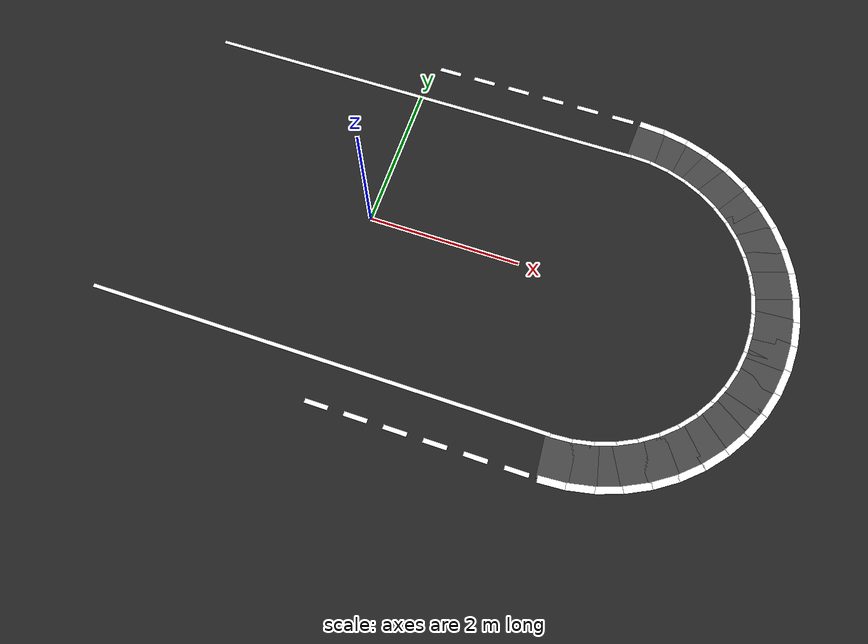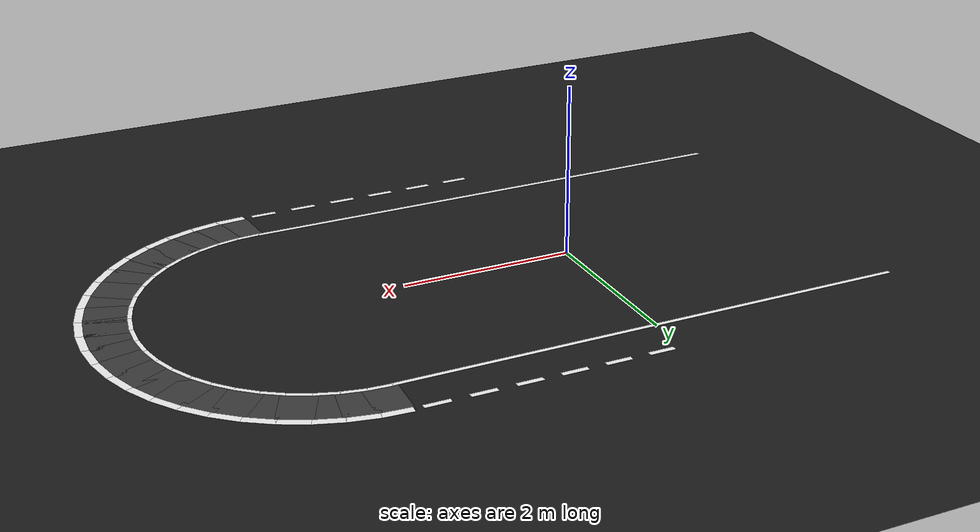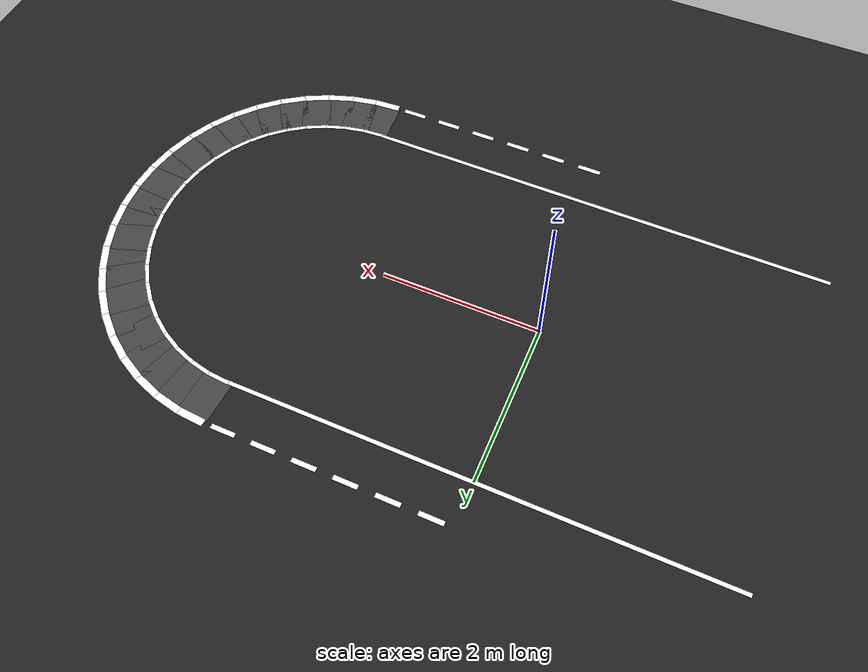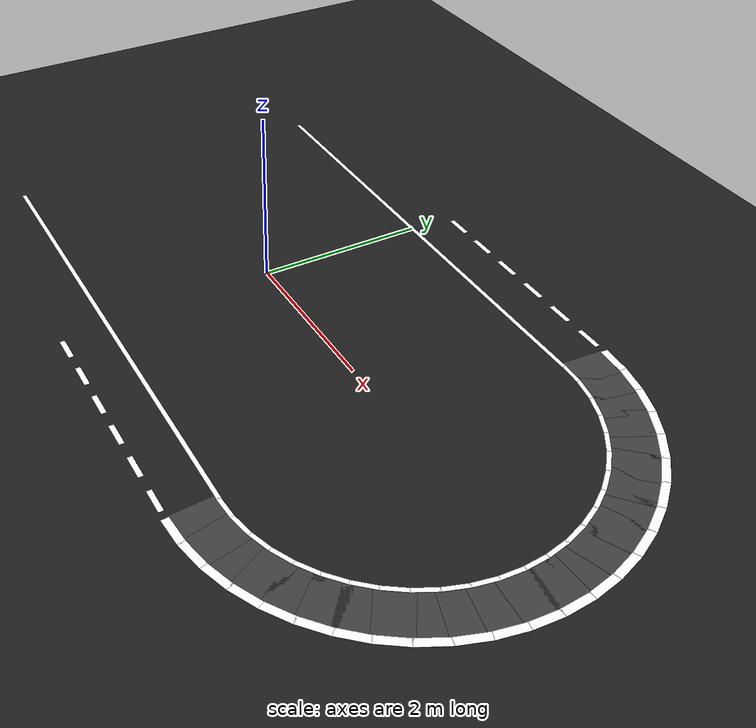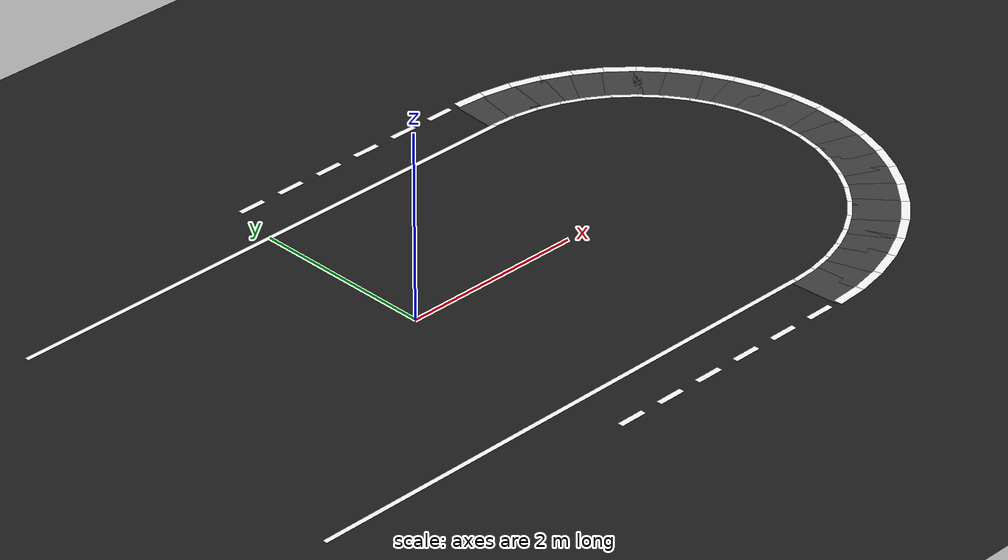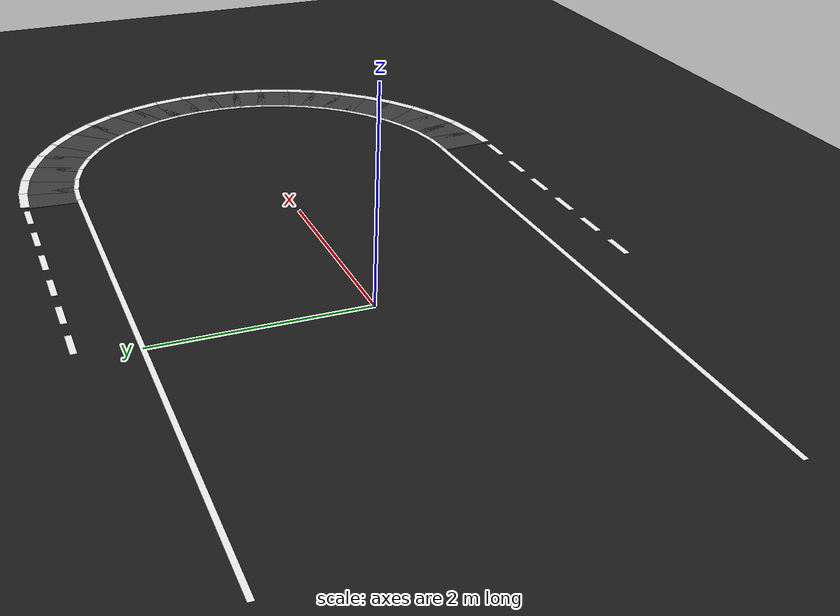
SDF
<sdf version="1.6">
 <world name="oval_lane_world">
  <model name="ground_plane">
   <static>true</static>
   <link name="link">
    <collision name="collision">
     <geometry><plane><normal>0 0 1</normal><size>100 100</size></plane></geometry>
     <surface><friction><ode><mu>1.0</mu><mu2>1.0</mu2></ode></friction></surface>
    </collision>
    <visual name="visual">
     <geometry><plane><normal>0 0 1</normal><size>100 100</size></plane></geometry>
     <material><ambient>0.10 0.10 0.10 1</ambient><diffuse>0.12 0.12 0.12 1</diffuse></material>
    </visual>
   </link>
  </model>
  <model name="sl_top_0">
   <static>true</static>
   <pose>0.00000 2.00000 0.00700 0 0 0.00000</pose>
   <link name="link">
    <visual name="visual">
     <geometry><box><size>6.00000 0.05000 0.00400</size></box></geometry>
     <material>
      <ambient>1.000 1.000 1.000 1</ambient>
      <diffuse>1.000 1.000 1.000 1</diffuse>
      <specular>0.05 0.05 0.05 1</specular>
     </material>
    </visual>
   </link>
  </model>
  <model name="sl_bot_0">
   <static>true</static>
   <pose>0.00000 -2.00000 0.00700 0 0 0.00000</pose>
   <link name="link">
    <visual name="visual">
     <geometry><box><size>6.00000 0.05000 0.00400</size></box></geometry>
     <material>
      <ambient>1.000 1.000 1.000 1</ambient>
      <diffuse>1.000 1.000 1.000 1</diffuse>
      <specular>0.05 0.05 0.05 1</specular>
     </material>
    </visual>
   </link>
  </model>
  <model name="dl_top_1_6">
   <static>true</static>
   <pose>0.25000 2.53400 0.00700 0 0 0.00000</pose>
   <link name="link">
    <visual name="visual">
     <geometry><box><size>0.30000 0.06000 0.00400</size></box></geometry>
     <material>
      <ambient>1.000 1.000 1.000 1</ambient>
      <diffuse>1.000 1.000 1.000 1</diffuse>
      <specular>0.05 0.05 0.05 1</specular>
     </material>
    </visual>
   </link>
  </model>
  <model name="dl_top_1_7">
   <static>true</static>
   <pose>0.75000 2.53400 0.00700 0 0 0.00000</pose>
   <link name="link">
    <visual name="visual">
     <geometry><box><size>0.30000 0.06000 0.00400</size></box></geometry>
     <material>
      <ambient>1.000 1.000 1.000 1</ambient>
      <diffuse>1.000 1.000 1.000 1</diffuse>
      <specular>0.05 0.05 0.05 1</specular>
     </material>
    </visual>
   </link>
  </model>
  <model name="dl_top_1_8">
   <static>true</static>
   <pose>1.25000 2.53400 0.00700 0 0 0.00000</pose>
   <link name="link">
    <visual name="visual">
     <geometry><box><size>0.30000 0.06000 0.00400</size></box></geometry>
     <material>
      <ambient>1.000 1.000 1.000 1</ambient>
      <diffuse>1.000 1.000 1.000 1</diffuse>
      <specular>0.05 0.05 0.05 1</specular>
     </material>
    </visual>
   </link>
  </model>
  <model name="dl_top_1_9">
   <static>true</static>
   <pose>1.75000 2.53400 0.00700 0 0 0.00000</pose>
   <link name="link">
    <visual name="visual">
     <geometry><box><size>0.30000 0.06000 0.00400</size></box></geometry>
     <material>
      <ambient>1.000 1.000 1.000 1</ambient>
      <diffuse>1.000 1.000 1.000 1</diffuse>
      <specular>0.05 0.05 0.05 1</specular>
     </material>
    </visual>
   </link>
  </model>
  <model name="dl_top_1_10">
   <static>true</static>
   <pose>2.25000 2.53400 0.00700 0 0 0.00000</pose>
   <link name="link">
    <visual name="visual">
     <geometry><box><size>0.30000 0.06000 0.00400</size></box></geometry>
     <material>
      <ambient>1.000 1.000 1.000 1</ambient>
      <diffuse>1.000 1.000 1.000 1</diffuse>
      <specular>0.05 0.05 0.05 1</specular>
     </material>
    </visual>
   </link>
  </model>
  <model name="dl_top_1_11">
   <static>true</static>
   <pose>2.75000 2.53400 0.00700 0 0 0.00000</pose>
   <link name="link">
    <visual name="visual">
     <geometry><box><size>0.30000 0.06000 0.00400</size></box></geometry>
     <material>
      <ambient>1.000 1.000 1.000 1</ambient>
      <diffuse>1.000 1.000 1.000 1</diffuse>
      <specular>0.05 0.05 0.05 1</specular>
     </material>
    </visual>
   </link>
  </model>
  <model name="dl_bot_1_6">
   <static>true</static>
   <pose>0.25000 -2.53400 0.00700 0 0 0.00000</pose>
   <link name="link">
    <visual name="visual">
     <geometry><box><size>0.30000 0.06000 0.00400</size></box></geometry>
     <material>
      <ambient>1.000 1.000 1.000 1</ambient>
      <diffuse>1.000 1.000 1.000 1</diffuse>
      <specular>0.05 0.05 0.05 1</specular>
     </material>
    </visual>
   </link>
  </model>
  <model name="dl_bot_1_7">
   <static>true</static>
   <pose>0.75000 -2.53400 0.00700 0 0 0.00000</pose>
   <link name="link">
    <visual name="visual">
     <geometry><box><size>0.30000 0.06000 0.00400</size></box></geometry>
     <material>
      <ambient>1.000 1.000 1.000 1</ambient>
      <diffuse>1.000 1.000 1.000 1</diffuse>
      <specular>0.05 0.05 0.05 1</specular>
     </material>
    </visual>
   </link>
  </model>
  <model name="dl_bot_1_8">
   <static>true</static>
   <pose>1.25000 -2.53400 0.00700 0 0 0.00000</pose>
   <link name="link">
    <visual name="visual">
     <geometry><box><size>0.30000 0.06000 0.00400</size></box></geometry>
     <material>
      <ambient>1.000 1.000 1.000 1</ambient>
      <diffuse>1.000 1.000 1.000 1</diffuse>
      <specular>0.05 0.05 0.05 1</specular>
     </material>
    </visual>
   </link>
  </model>
  <model name="dl_bot_1_9">
   <static>true</static>
   <pose>1.75000 -2.53400 0.00700 0 0 0.00000</pose>
   <link name="link">
    <visual name="visual">
     <geometry><box><size>0.30000 0.06000 0.00400</size></box></geometry>
     <material>
      <ambient>1.000 1.000 1.000 1</ambient>
      <diffuse>1.000 1.000 1.000 1</diffuse>
      <specular>0.05 0.05 0.05 1</specular>
     </material>
    </visual>
   </link>
  </model>
  <model name="dl_bot_1_10">
   <static>true</static>
   <pose>2.25000 -2.53400 0.00700 0 0 0.00000</pose>
   <link name="link">
    <visual name="visual">
     <geometry><box><size>0.30000 0.06000 0.00400</size></box></geometry>
     <material>
      <ambient>1.000 1.000 1.000 1</ambient>
      <diffuse>1.000 1.000 1.000 1</diffuse>
      <specular>0.05 0.05 0.05 1</specular>
     </material>
    </visual>
   </link>
  </model>
  <model name="dl_bot_1_11">
   <static>true</static>
   <pose>2.75000 -2.53400 0.00700 0 0 0.00000</pose>
   <link name="link">
    <visual name="visual">
     <geometry><box><size>0.30000 0.06000 0.00400</size></box></geometry>
     <material>
      <ambient>1.000 1.000 1.000 1</ambient>
      <diffuse>1.000 1.000 1.000 1</diffuse>
      <specular>0.05 0.05 0.05 1</specular>
     </material>
    </visual>
   </link>
  </model>
  <model name="road_r_0">
   <static>true</static>
   <pose>3.14777 2.25466 0.00250 0.0 0.0 -0.06545</pose>
   <link name="link">
    <visual name="visual">
     <geometry><box><size>0.38165 0.53400 0.00500</size></box></geometry>
     <material>
      <ambient>0.250 0.250 0.250 1</ambient>
      <diffuse>0.250 0.250 0.250 1</diffuse>
      <specular>0.05 0.05 0.05 1</specular>
     </material>
    </visual>
   </link>
  </model>
  <model name="cl_r_0_0">
   <static>true</static>
   <pose>3.13081 1.99572 0.00700 0 0 -0.06545</pose>
   <link name="link">
    <visual name="visual">
     <geometry><box><size>0.27180 0.05000 0.00400</size></box></geometry>
     <material>
      <ambient>1.000 1.000 1.000 1</ambient>
      <diffuse>1.000 1.000 1.000 1</diffuse>
      <specular>0.05 0.05 0.05 1</specular>
     </material>
    </visual>
   </link>
  </model>
  <model name="cl_r_1_0">
   <static>true</static>
   <pose>3.16573 2.52857 0.00700 0 0 -0.06545</pose>
   <link name="link">
    <visual name="visual">
     <geometry><box><size>0.34170 0.09000 0.00400</size></box></geometry>
     <material>
      <ambient>1.000 1.000 1.000 1</ambient>
      <diffuse>1.000 1.000 1.000 1</diffuse>
      <specular>0.05 0.05 0.05 1</specular>
     </material>
    </visual>
   </link>
  </model>
  <model name="road_r_1">
   <static>true</static>
   <pose>3.44081 2.21608 0.00250 0.0 0.0 -0.19635</pose>
   <link name="link">
    <visual name="visual">
     <geometry><box><size>0.38165 0.53400 0.00500</size></box></geometry>
     <material>
      <ambient>0.250 0.250 0.250 1</ambient>
      <diffuse>0.250 0.250 0.250 1</diffuse>
      <specular>0.05 0.05 0.05 1</specular>
     </material>
    </visual>
   </link>
  </model>
  <model name="cl_r_0_1">
   <static>true</static>
   <pose>3.39018 1.96157 0.00700 0 0 -0.19635</pose>
   <link name="link">
    <visual name="visual">
     <geometry><box><size>0.27180 0.05000 0.00400</size></box></geometry>
     <material>
      <ambient>1.000 1.000 1.000 1</ambient>
      <diffuse>1.000 1.000 1.000 1</diffuse>
      <specular>0.05 0.05 0.05 1</specular>
     </material>
    </visual>
   </link>
  </model>
  <model name="cl_r_1_1">
   <static>true</static>
   <pose>3.49436 2.48531 0.00700 0 0 -0.19635</pose>
   <link name="link">
    <visual name="visual">
     <geometry><box><size>0.34170 0.09000 0.00400</size></box></geometry>
     <material>
      <ambient>1.000 1.000 1.000 1</ambient>
      <diffuse>1.000 1.000 1.000 1</diffuse>
      <specular>0.05 0.05 0.05 1</specular>
     </material>
    </visual>
   </link>
  </model>
  <model name="road_r_2">
   <static>true</static>
   <pose>3.72629 2.13959 0.00250 0.0 0.0 -0.32725</pose>
   <link name="link">
    <visual name="visual">
     <geometry><box><size>0.38165 0.53400 0.00500</size></box></geometry>
     <material>
      <ambient>0.250 0.250 0.250 1</ambient>
      <diffuse>0.250 0.250 0.250 1</diffuse>
      <specular>0.05 0.05 0.05 1</specular>
     </material>
    </visual>
   </link>
  </model>
  <model name="cl_r_0_2">
   <static>true</static>
   <pose>3.64288 1.89386 0.00700 0 0 -0.32725</pose>
   <link name="link">
    <visual name="visual">
     <geometry><box><size>0.27180 0.05000 0.00400</size></box></geometry>
     <material>
      <ambient>1.000 1.000 1.000 1</ambient>
      <diffuse>1.000 1.000 1.000 1</diffuse>
      <specular>0.05 0.05 0.05 1</specular>
     </material>
    </visual>
   </link>
  </model>
  <model name="cl_r_1_2">
   <static>true</static>
   <pose>3.81453 2.39952 0.00700 0 0 -0.32725</pose>
   <link name="link">
    <visual name="visual">
     <geometry><box><size>0.34170 0.09000 0.00400</size></box></geometry>
     <material>
      <ambient>1.000 1.000 1.000 1</ambient>
      <diffuse>1.000 1.000 1.000 1</diffuse>
      <specular>0.05 0.05 0.05 1</specular>
     </material>
    </visual>
   </link>
  </model>
  <model name="road_r_3">
   <static>true</static>
   <pose>3.99935 2.02648 0.00250 0.0 0.0 -0.45815</pose>
   <link name="link">
    <visual name="visual">
     <geometry><box><size>0.38165 0.53400 0.00500</size></box></geometry>
     <material>
      <ambient>0.250 0.250 0.250 1</ambient>
      <diffuse>0.250 0.250 0.250 1</diffuse>
      <specular>0.05 0.05 0.05 1</specular>
     </material>
    </visual>
   </link>
  </model>
  <model name="cl_r_0_3">
   <static>true</static>
   <pose>3.88458 1.79375 0.00700 0 0 -0.45815</pose>
   <link name="link">
    <visual name="visual">
     <geometry><box><size>0.27180 0.05000 0.00400</size></box></geometry>
     <material>
      <ambient>1.000 1.000 1.000 1</ambient>
      <diffuse>1.000 1.000 1.000 1</diffuse>
      <specular>0.05 0.05 0.05 1</specular>
     </material>
    </visual>
   </link>
  </model>
  <model name="cl_r_1_3">
   <static>true</static>
   <pose>4.12076 2.27268 0.00700 0 0 -0.45815</pose>
   <link name="link">
    <visual name="visual">
     <geometry><box><size>0.34170 0.09000 0.00400</size></box></geometry>
     <material>
      <ambient>1.000 1.000 1.000 1</ambient>
      <diffuse>1.000 1.000 1.000 1</diffuse>
      <specular>0.05 0.05 0.05 1</specular>
     </material>
    </visual>
   </link>
  </model>
  <model name="road_r_4">
   <static>true</static>
   <pose>4.25531 1.87871 0.00250 0.0 0.0 -0.58905</pose>
   <link name="link">
    <visual name="visual">
     <geometry><box><size>0.38165 0.53400 0.00500</size></box></geometry>
     <material>
      <ambient>0.250 0.250 0.250 1</ambient>
      <diffuse>0.250 0.250 0.250 1</diffuse>
      <specular>0.05 0.05 0.05 1</specular>
     </material>
    </visual>
   </link>
  </model>
  <model name="cl_r_0_4">
   <static>true</static>
   <pose>4.11114 1.66294 0.00700 0 0 -0.58905</pose>
   <link name="link">
    <visual name="visual">
     <geometry><box><size>0.27180 0.05000 0.00400</size></box></geometry>
     <material>
      <ambient>1.000 1.000 1.000 1</ambient>
      <diffuse>1.000 1.000 1.000 1</diffuse>
      <specular>0.05 0.05 0.05 1</specular>
     </material>
    </visual>
   </link>
  </model>
  <model name="cl_r_1_4">
   <static>true</static>
   <pose>4.40781 2.10694 0.00700 0 0 -0.58905</pose>
   <link name="link">
    <visual name="visual">
     <geometry><box><size>0.34170 0.09000 0.00400</size></box></geometry>
     <material>
      <ambient>1.000 1.000 1.000 1</ambient>
      <diffuse>1.000 1.000 1.000 1</diffuse>
      <specular>0.05 0.05 0.05 1</specular>
     </material>
    </visual>
   </link>
  </model>
  <model name="road_r_5">
   <static>true</static>
   <pose>4.48979 1.69878 0.00250 0.0 0.0 -0.71995</pose>
   <link name="link">
    <visual name="visual">
     <geometry><box><size>0.38165 0.53400 0.00500</size></box></geometry>
     <material>
      <ambient>0.250 0.250 0.250 1</ambient>
      <diffuse>0.250 0.250 0.250 1</diffuse>
      <specular>0.05 0.05 0.05 1</specular>
     </material>
    </visual>
   </link>
  </model>
  <model name="cl_r_0_5">
   <static>true</static>
   <pose>4.31869 1.50368 0.00700 0 0 -0.71995</pose>
   <link name="link">
    <visual name="visual">
     <geometry><box><size>0.27180 0.05000 0.00400</size></box></geometry>
     <material>
      <ambient>1.000 1.000 1.000 1</ambient>
      <diffuse>1.000 1.000 1.000 1</diffuse>
      <specular>0.05 0.05 0.05 1</specular>
     </material>
    </visual>
   </link>
  </model>
  <model name="cl_r_1_5">
   <static>true</static>
   <pose>4.67078 1.90516 0.00700 0 0 -0.71995</pose>
   <link name="link">
    <visual name="visual">
     <geometry><box><size>0.34170 0.09000 0.00400</size></box></geometry>
     <material>
      <ambient>1.000 1.000 1.000 1</ambient>
      <diffuse>1.000 1.000 1.000 1</diffuse>
      <specular>0.05 0.05 0.05 1</specular>
     </material>
    </visual>
   </link>
  </model>
  <model name="road_r_6">
   <static>true</static>
   <pose>4.69878 1.48980 0.00250 0.0 0.0 -0.85085</pose>
   <link name="link">
    <visual name="visual">
     <geometry><box><size>0.38165 0.53400 0.00500</size></box></geometry>
     <material>
      <ambient>0.250 0.250 0.250 1</ambient>
      <diffuse>0.250 0.250 0.250 1</diffuse>
      <specular>0.05 0.05 0.05 1</specular>
     </material>
    </visual>
   </link>
  </model>
  <model name="cl_r_0_6">
   <static>true</static>
   <pose>4.50368 1.31869 0.00700 0 0 -0.85085</pose>
   <link name="link">
    <visual name="visual">
     <geometry><box><size>0.27180 0.05000 0.00400</size></box></geometry>
     <material>
      <ambient>1.000 1.000 1.000 1</ambient>
      <diffuse>1.000 1.000 1.000 1</diffuse>
      <specular>0.05 0.05 0.05 1</specular>
     </material>
    </visual>
   </link>
  </model>
  <model name="cl_r_1_6">
   <static>true</static>
   <pose>4.90516 1.67078 0.00700 0 0 -0.85085</pose>
   <link name="link">
    <visual name="visual">
     <geometry><box><size>0.34170 0.09000 0.00400</size></box></geometry>
     <material>
      <ambient>1.000 1.000 1.000 1</ambient>
      <diffuse>1.000 1.000 1.000 1</diffuse>
      <specular>0.05 0.05 0.05 1</specular>
     </material>
    </visual>
   </link>
  </model>
  <model name="road_r_7">
   <static>true</static>
   <pose>4.87871 1.25531 0.00250 0.0 0.0 -0.98175</pose>
   <link name="link">
    <visual name="visual">
     <geometry><box><size>0.38165 0.53400 0.00500</size></box></geometry>
     <material>
      <ambient>0.250 0.250 0.250 1</ambient>
      <diffuse>0.250 0.250 0.250 1</diffuse>
      <specular>0.05 0.05 0.05 1</specular>
     </material>
    </visual>
   </link>
  </model>
  <model name="cl_r_0_7">
   <static>true</static>
   <pose>4.66294 1.11114 0.00700 0 0 -0.98175</pose>
   <link name="link">
    <visual name="visual">
     <geometry><box><size>0.27180 0.05000 0.00400</size></box></geometry>
     <material>
      <ambient>1.000 1.000 1.000 1</ambient>
      <diffuse>1.000 1.000 1.000 1</diffuse>
      <specular>0.05 0.05 0.05 1</specular>
     </material>
    </visual>
   </link>
  </model>
  <model name="cl_r_1_7">
   <static>true</static>
   <pose>5.10694 1.40781 0.00700 0 0 -0.98175</pose>
   <link name="link">
    <visual name="visual">
     <geometry><box><size>0.34170 0.09000 0.00400</size></box></geometry>
     <material>
      <ambient>1.000 1.000 1.000 1</ambient>
      <diffuse>1.000 1.000 1.000 1</diffuse>
      <specular>0.05 0.05 0.05 1</specular>
     </material>
    </visual>
   </link>
  </model>
  <model name="road_r_8">
   <static>true</static>
   <pose>5.02648 0.99935 0.00250 0.0 0.0 -1.11265</pose>
   <link name="link">
    <visual name="visual">
     <geometry><box><size>0.38165 0.53400 0.00500</size></box></geometry>
     <material>
      <ambient>0.250 0.250 0.250 1</ambient>
      <diffuse>0.250 0.250 0.250 1</diffuse>
      <specular>0.05 0.05 0.05 1</specular>
     </material>
    </visual>
   </link>
  </model>
  <model name="cl_r_0_8">
   <static>true</static>
   <pose>4.79375 0.88458 0.00700 0 0 -1.11265</pose>
   <link name="link">
    <visual name="visual">
     <geometry><box><size>0.27180 0.05000 0.00400</size></box></geometry>
     <material>
      <ambient>1.000 1.000 1.000 1</ambient>
      <diffuse>1.000 1.000 1.000 1</diffuse>
      <specular>0.05 0.05 0.05 1</specular>
     </material>
    </visual>
   </link>
  </model>
  <model name="cl_r_1_8">
   <static>true</static>
   <pose>5.27268 1.12076 0.00700 0 0 -1.11265</pose>
   <link name="link">
    <visual name="visual">
     <geometry><box><size>0.34170 0.09000 0.00400</size></box></geometry>
     <material>
      <ambient>1.000 1.000 1.000 1</ambient>
      <diffuse>1.000 1.000 1.000 1</diffuse>
      <specular>0.05 0.05 0.05 1</specular>
     </material>
    </visual>
   </link>
  </model>
  <model name="road_r_9">
   <static>true</static>
   <pose>5.13959 0.72629 0.00250 0.0 0.0 -1.24355</pose>
   <link name="link">
    <visual name="visual">
     <geometry><box><size>0.38165 0.53400 0.00500</size></box></geometry>
     <material>
      <ambient>0.250 0.250 0.250 1</ambient>
      <diffuse>0.250 0.250 0.250 1</diffuse>
      <specular>0.05 0.05 0.05 1</specular>
     </material>
    </visual>
   </link>
  </model>
  <model name="cl_r_0_9">
   <static>true</static>
   <pose>4.89386 0.64288 0.00700 0 0 -1.24355</pose>
   <link name="link">
    <visual name="visual">
     <geometry><box><size>0.27180 0.05000 0.00400</size></box></geometry>
     <material>
      <ambient>1.000 1.000 1.000 1</ambient>
      <diffuse>1.000 1.000 1.000 1</diffuse>
      <specular>0.05 0.05 0.05 1</specular>
     </material>
    </visual>
   </link>
  </model>
  <model name="cl_r_1_9">
   <static>true</static>
   <pose>5.39952 0.81453 0.00700 0 0 -1.24355</pose>
   <link name="link">
    <visual name="visual">
     <geometry><box><size>0.34170 0.09000 0.00400</size></box></geometry>
     <material>
      <ambient>1.000 1.000 1.000 1</ambient>
      <diffuse>1.000 1.000 1.000 1</diffuse>
      <specular>0.05 0.05 0.05 1</specular>
     </material>
    </visual>
   </link>
  </model>
  <model name="road_r_10">
   <static>true</static>
   <pose>5.21608 0.44081 0.00250 0.0 0.0 -1.37445</pose>
   <link name="link">
    <visual name="visual">
     <geometry><box><size>0.38165 0.53400 0.00500</size></box></geometry>
     <material>
      <ambient>0.250 0.250 0.250 1</ambient>
      <diffuse>0.250 0.250 0.250 1</diffuse>
      <specular>0.05 0.05 0.05 1</specular>
     </material>
    </visual>
   </link>
  </model>
  <model name="cl_r_0_10">
   <static>true</static>
   <pose>4.96157 0.39018 0.00700 0 0 -1.37445</pose>
   <link name="link">
    <visual name="visual">
     <geometry><box><size>0.27180 0.05000 0.00400</size></box></geometry>
     <material>
      <ambient>1.000 1.000 1.000 1</ambient>
      <diffuse>1.000 1.000 1.000 1</diffuse>
      <specular>0.05 0.05 0.05 1</specular>
     </material>
    </visual>
   </link>
  </model>
  <model name="cl_r_1_10">
   <static>true</static>
   <pose>5.48531 0.49436 0.00700 0 0 -1.37445</pose>
   <link name="link">
    <visual name="visual">
     <geometry><box><size>0.34170 0.09000 0.00400</size></box></geometry>
     <material>
      <ambient>1.000 1.000 1.000 1</ambient>
      <diffuse>1.000 1.000 1.000 1</diffuse>
      <specular>0.05 0.05 0.05 1</specular>
     </material>
    </visual>
   </link>
  </model>
  <model name="road_r_11">
   <static>true</static>
   <pose>5.25466 0.14778 0.00250 0.0 0.0 -1.50535</pose>
   <link name="link">
    <visual name="visual">
     <geometry><box><size>0.38165 0.53400 0.00500</size></box></geometry>
     <material>
      <ambient>0.250 0.250 0.250 1</ambient>
      <diffuse>0.250 0.250 0.250 1</diffuse>
      <specular>0.05 0.05 0.05 1</specular>
     </material>
    </visual>
   </link>
  </model>
  <model name="cl_r_0_11">
   <static>true</static>
   <pose>4.99572 0.13081 0.00700 0 0 -1.50535</pose>
   <link name="link">
    <visual name="visual">
     <geometry><box><size>0.27180 0.05000 0.00400</size></box></geometry>
     <material>
      <ambient>1.000 1.000 1.000 1</ambient>
      <diffuse>1.000 1.000 1.000 1</diffuse>
      <specular>0.05 0.05 0.05 1</specular>
     </material>
    </visual>
   </link>
  </model>
  <model name="cl_r_1_11">
   <static>true</static>
   <pose>5.52858 0.16573 0.00700 0 0 -1.50535</pose>
   <link name="link">
    <visual name="visual">
     <geometry><box><size>0.34170 0.09000 0.00400</size></box></geometry>
     <material>
      <ambient>1.000 1.000 1.000 1</ambient>
      <diffuse>1.000 1.000 1.000 1</diffuse>
      <specular>0.05 0.05 0.05 1</specular>
     </material>
    </visual>
   </link>
  </model>
  <model name="road_r_12">
   <static>true</static>
   <pose>5.25466 -0.14777 0.00250 0.0 0.0 -1.63625</pose>
   <link name="link">
    <visual name="visual">
     <geometry><box><size>0.38165 0.53400 0.00500</size></box></geometry>
     <material>
      <ambient>0.250 0.250 0.250 1</ambient>
      <diffuse>0.250 0.250 0.250 1</diffuse>
      <specular>0.05 0.05 0.05 1</specular>
     </material>
    </visual>
   </link>
  </model>
  <model name="cl_r_0_12">
   <static>true</static>
   <pose>4.99572 -0.13081 0.00700 0 0 -1.63625</pose>
   <link name="link">
    <visual name="visual">
     <geometry><box><size>0.27180 0.05000 0.00400</size></box></geometry>
     <material>
      <ambient>1.000 1.000 1.000 1</ambient>
      <diffuse>1.000 1.000 1.000 1</diffuse>
      <specular>0.05 0.05 0.05 1</specular>
     </material>
    </visual>
   </link>
  </model>
  <model name="cl_r_1_12">
   <static>true</static>
   <pose>5.52857 -0.16573 0.00700 0 0 -1.63625</pose>
   <link name="link">
    <visual name="visual">
     <geometry><box><size>0.34170 0.09000 0.00400</size></box></geometry>
     <material>
      <ambient>1.000 1.000 1.000 1</ambient>
      <diffuse>1.000 1.000 1.000 1</diffuse>
      <specular>0.05 0.05 0.05 1</specular>
     </material>
    </visual>
   </link>
  </model>
  <model name="road_r_13">
   <static>true</static>
   <pose>5.21609 -0.44081 0.00250 0.0 0.0 -1.76715</pose>
   <link name="link">
    <visual name="visual">
     <geometry><box><size>0.38165 0.53400 0.00500</size></box></geometry>
     <material>
      <ambient>0.250 0.250 0.250 1</ambient>
      <diffuse>0.250 0.250 0.250 1</diffuse>
      <specular>0.05 0.05 0.05 1</specular>
     </material>
    </visual>
   </link>
  </model>
  <model name="cl_r_0_13">
   <static>true</static>
   <pose>4.96157 -0.39018 0.00700 0 0 -1.76715</pose>
   <link name="link">
    <visual name="visual">
     <geometry><box><size>0.27180 0.05000 0.00400</size></box></geometry>
     <material>
      <ambient>1.000 1.000 1.000 1</ambient>
      <diffuse>1.000 1.000 1.000 1</diffuse>
      <specular>0.05 0.05 0.05 1</specular>
     </material>
    </visual>
   </link>
  </model>
  <model name="cl_r_1_13">
   <static>true</static>
   <pose>5.48531 -0.49436 0.00700 0 0 -1.76715</pose>
   <link name="link">
    <visual name="visual">
     <geometry><box><size>0.34170 0.09000 0.00400</size></box></geometry>
     <material>
      <ambient>1.000 1.000 1.000 1</ambient>
      <diffuse>1.000 1.000 1.000 1</diffuse>
      <specular>0.05 0.05 0.05 1</specular>
     </material>
    </visual>
   </link>
  </model>
  <model name="road_r_14">
   <static>true</static>
   <pose>5.13959 -0.72629 0.00250 0.0 0.0 -1.89805</pose>
   <link name="link">
    <visual name="visual">
     <geometry><box><size>0.38165 0.53400 0.00500</size></box></geometry>
     <material>
      <ambient>0.250 0.250 0.250 1</ambient>
      <diffuse>0.250 0.250 0.250 1</diffuse>
      <specular>0.05 0.05 0.05 1</specular>
     </material>
    </visual>
   </link>
  </model>
  <model name="cl_r_0_14">
   <static>true</static>
   <pose>4.89386 -0.64288 0.00700 0 0 -1.89805</pose>
   <link name="link">
    <visual name="visual">
     <geometry><box><size>0.27180 0.05000 0.00400</size></box></geometry>
     <material>
      <ambient>1.000 1.000 1.000 1</ambient>
      <diffuse>1.000 1.000 1.000 1</diffuse>
      <specular>0.05 0.05 0.05 1</specular>
     </material>
    </visual>
   </link>
  </model>
  <model name="cl_r_1_14">
   <static>true</static>
   <pose>5.39952 -0.81453 0.00700 0 0 -1.89805</pose>
   <link name="link">
    <visual name="visual">
     <geometry><box><size>0.34170 0.09000 0.00400</size></box></geometry>
     <material>
      <ambient>1.000 1.000 1.000 1</ambient>
      <diffuse>1.000 1.000 1.000 1</diffuse>
      <specular>0.05 0.05 0.05 1</specular>
     </material>
    </visual>
   </link>
  </model>
  <model name="road_r_15">
   <static>true</static>
   <pose>5.02648 -0.99935 0.00250 0.0 0.0 -2.02895</pose>
   <link name="link">
    <visual name="visual">
     <geometry><box><size>0.38165 0.53400 0.00500</size></box></geometry>
     <material>
      <ambient>0.250 0.250 0.250 1</ambient>
      <diffuse>0.250 0.250 0.250 1</diffuse>
      <specular>0.05 0.05 0.05 1</specular>
     </material>
    </visual>
   </link>
  </model>
  <model name="cl_r_0_15">
   <static>true</static>
   <pose>4.79375 -0.88458 0.00700 0 0 -2.02895</pose>
   <link name="link">
    <visual name="visual">
     <geometry><box><size>0.27180 0.05000 0.00400</size></box></geometry>
     <material>
      <ambient>1.000 1.000 1.000 1</ambient>
      <diffuse>1.000 1.000 1.000 1</diffuse>
      <specular>0.05 0.05 0.05 1</specular>
     </material>
    </visual>
   </link>
  </model>
  <model name="cl_r_1_15">
   <static>true</static>
   <pose>5.27268 -1.12076 0.00700 0 0 -2.02895</pose>
   <link name="link">
    <visual name="visual">
     <geometry><box><size>0.34170 0.09000 0.00400</size></box></geometry>
     <material>
      <ambient>1.000 1.000 1.000 1</ambient>
      <diffuse>1.000 1.000 1.000 1</diffuse>
      <specular>0.05 0.05 0.05 1</specular>
     </material>
    </visual>
   </link>
  </model>
  <model name="road_r_16">
   <static>true</static>
   <pose>4.87871 -1.25531 0.00250 0.0 0.0 -2.15984</pose>
   <link name="link">
    <visual name="visual">
     <geometry><box><size>0.38165 0.53400 0.00500</size></box></geometry>
     <material>
      <ambient>0.250 0.250 0.250 1</ambient>
      <diffuse>0.250 0.250 0.250 1</diffuse>
      <specular>0.05 0.05 0.05 1</specular>
     </material>
    </visual>
   </link>
  </model>
  <model name="cl_r_0_16">
   <static>true</static>
   <pose>4.66294 -1.11114 0.00700 0 0 -2.15984</pose>
   <link name="link">
    <visual name="visual">
     <geometry><box><size>0.27180 0.05000 0.00400</size></box></geometry>
     <material>
      <ambient>1.000 1.000 1.000 1</ambient>
      <diffuse>1.000 1.000 1.000 1</diffuse>
      <specular>0.05 0.05 0.05 1</specular>
     </material>
    </visual>
   </link>
  </model>
  <model name="cl_r_1_16">
   <static>true</static>
   <pose>5.10694 -1.40781 0.00700 0 0 -2.15984</pose>
   <link name="link">
    <visual name="visual">
     <geometry><box><size>0.34170 0.09000 0.00400</size></box></geometry>
     <material>
      <ambient>1.000 1.000 1.000 1</ambient>
      <diffuse>1.000 1.000 1.000 1</diffuse>
      <specular>0.05 0.05 0.05 1</specular>
     </material>
    </visual>
   </link>
  </model>
  <model name="road_r_17">
   <static>true</static>
   <pose>4.69878 -1.48980 0.00250 0.0 0.0 -2.29074</pose>
   <link name="link">
    <visual name="visual">
     <geometry><box><size>0.38165 0.53400 0.00500</size></box></geometry>
     <material>
      <ambient>0.250 0.250 0.250 1</ambient>
      <diffuse>0.250 0.250 0.250 1</diffuse>
      <specular>0.05 0.05 0.05 1</specular>
     </material>
    </visual>
   </link>
  </model>
  <model name="cl_r_0_17">
   <static>true</static>
   <pose>4.50368 -1.31869 0.00700 0 0 -2.29074</pose>
   <link name="link">
    <visual name="visual">
     <geometry><box><size>0.27180 0.05000 0.00400</size></box></geometry>
     <material>
      <ambient>1.000 1.000 1.000 1</ambient>
      <diffuse>1.000 1.000 1.000 1</diffuse>
      <specular>0.05 0.05 0.05 1</specular>
     </material>
    </visual>
   </link>
  </model>
  <model name="cl_r_1_17">
   <static>true</static>
   <pose>4.90516 -1.67078 0.00700 0 0 -2.29074</pose>
   <link name="link">
    <visual name="visual">
     <geometry><box><size>0.34170 0.09000 0.00400</size></box></geometry>
     <material>
      <ambient>1.000 1.000 1.000 1</ambient>
      <diffuse>1.000 1.000 1.000 1</diffuse>
      <specular>0.05 0.05 0.05 1</specular>
     </material>
    </visual>
   </link>
  </model>
  <model name="road_r_18">
   <static>true</static>
   <pose>4.48979 -1.69878 0.00250 0.0 0.0 -2.42164</pose>
   <link name="link">
    <visual name="visual">
     <geometry><box><size>0.38165 0.53400 0.00500</size></box></geometry>
     <material>
      <ambient>0.250 0.250 0.250 1</ambient>
      <diffuse>0.250 0.250 0.250 1</diffuse>
      <specular>0.05 0.05 0.05 1</specular>
     </material>
    </visual>
   </link>
  </model>
  <model name="cl_r_0_18">
   <static>true</static>
   <pose>4.31869 -1.50368 0.00700 0 0 -2.42164</pose>
   <link name="link">
    <visual name="visual">
     <geometry><box><size>0.27180 0.05000 0.00400</size></box></geometry>
     <material>
      <ambient>1.000 1.000 1.000 1</ambient>
      <diffuse>1.000 1.000 1.000 1</diffuse>
      <specular>0.05 0.05 0.05 1</specular>
     </material>
    </visual>
   </link>
  </model>
  <model name="cl_r_1_18">
   <static>true</static>
   <pose>4.67078 -1.90516 0.00700 0 0 -2.42164</pose>
   <link name="link">
    <visual name="visual">
     <geometry><box><size>0.34170 0.09000 0.00400</size></box></geometry>
     <material>
      <ambient>1.000 1.000 1.000 1</ambient>
      <diffuse>1.000 1.000 1.000 1</diffuse>
      <specular>0.05 0.05 0.05 1</specular>
     </material>
    </visual>
   </link>
  </model>
  <model name="road_r_19">
   <static>true</static>
   <pose>4.25531 -1.87871 0.00250 0.0 0.0 -2.55254</pose>
   <link name="link">
    <visual name="visual">
     <geometry><box><size>0.38165 0.53400 0.00500</size></box></geometry>
     <material>
      <ambient>0.250 0.250 0.250 1</ambient>
      <diffuse>0.250 0.250 0.250 1</diffuse>
      <specular>0.05 0.05 0.05 1</specular>
     </material>
    </visual>
   </link>
  </model>
  <model name="cl_r_0_19">
   <static>true</static>
   <pose>4.11114 -1.66294 0.00700 0 0 -2.55254</pose>
   <link name="link">
    <visual name="visual">
     <geometry><box><size>0.27180 0.05000 0.00400</size></box></geometry>
     <material>
      <ambient>1.000 1.000 1.000 1</ambient>
      <diffuse>1.000 1.000 1.000 1</diffuse>
      <specular>0.05 0.05 0.05 1</specular>
     </material>
    </visual>
   </link>
  </model>
  <model name="cl_r_1_19">
   <static>true</static>
   <pose>4.40781 -2.10694 0.00700 0 0 -2.55254</pose>
   <link name="link">
    <visual name="visual">
     <geometry><box><size>0.34170 0.09000 0.00400</size></box></geometry>
     <material>
      <ambient>1.000 1.000 1.000 1</ambient>
      <diffuse>1.000 1.000 1.000 1</diffuse>
      <specular>0.05 0.05 0.05 1</specular>
     </material>
    </visual>
   </link>
  </model>
  <model name="road_r_20">
   <static>true</static>
   <pose>3.99935 -2.02648 0.00250 0.0 0.0 -2.68344</pose>
   <link name="link">
    <visual name="visual">
     <geometry><box><size>0.38165 0.53400 0.00500</size></box></geometry>
     <material>
      <ambient>0.250 0.250 0.250 1</ambient>
      <diffuse>0.250 0.250 0.250 1</diffuse>
      <specular>0.05 0.05 0.05 1</specular>
     </material>
    </visual>
   </link>
  </model>
  <model name="cl_r_0_20">
   <static>true</static>
   <pose>3.88458 -1.79375 0.00700 0 0 -2.68344</pose>
   <link name="link">
    <visual name="visual">
     <geometry><box><size>0.27180 0.05000 0.00400</size></box></geometry>
     <material>
      <ambient>1.000 1.000 1.000 1</ambient>
      <diffuse>1.000 1.000 1.000 1</diffuse>
      <specular>0.05 0.05 0.05 1</specular>
     </material>
    </visual>
   </link>
  </model>
  <model name="cl_r_1_20">
   <static>true</static>
   <pose>4.12076 -2.27268 0.00700 0 0 -2.68344</pose>
   <link name="link">
    <visual name="visual">
     <geometry><box><size>0.34170 0.09000 0.00400</size></box></geometry>
     <material>
      <ambient>1.000 1.000 1.000 1</ambient>
      <diffuse>1.000 1.000 1.000 1</diffuse>
      <specular>0.05 0.05 0.05 1</specular>
     </material>
    </visual>
   </link>
  </model>
  <model name="road_r_21">
   <static>true</static>
   <pose>3.72629 -2.13959 0.00250 0.0 0.0 -2.81434</pose>
   <link name="link">
    <visual name="visual">
     <geometry><box><size>0.38165 0.53400 0.00500</size></box></geometry>
     <material>
      <ambient>0.250 0.250 0.250 1</ambient>
      <diffuse>0.250 0.250 0.250 1</diffuse>
      <specular>0.05 0.05 0.05 1</specular>
     </material>
    </visual>
   </link>
  </model>
  <model name="cl_r_0_21">
   <static>true</static>
   <pose>3.64288 -1.89386 0.00700 0 0 -2.81434</pose>
   <link name="link">
    <visual name="visual">
     <geometry><box><size>0.27180 0.05000 0.00400</size></box></geometry>
     <material>
      <ambient>1.000 1.000 1.000 1</ambient>
      <diffuse>1.000 1.000 1.000 1</diffuse>
      <specular>0.05 0.05 0.05 1</specular>
     </material>
    </visual>
   </link>
  </model>
  <model name="cl_r_1_21">
   <static>true</static>
   <pose>3.81453 -2.39952 0.00700 0 0 -2.81434</pose>
   <link name="link">
    <visual name="visual">
     <geometry><box><size>0.34170 0.09000 0.00400</size></box></geometry>
     <material>
      <ambient>1.000 1.000 1.000 1</ambient>
      <diffuse>1.000 1.000 1.000 1</diffuse>
      <specular>0.05 0.05 0.05 1</specular>
     </material>
    </visual>
   </link>
  </model>
  <model name="road_r_22">
   <static>true</static>
   <pose>3.44081 -2.21609 0.00250 0.0 0.0 -2.94524</pose>
   <link name="link">
    <visual name="visual">
     <geometry><box><size>0.38165 0.53400 0.00500</size></box></geometry>
     <material>
      <ambient>0.250 0.250 0.250 1</ambient>
      <diffuse>0.250 0.250 0.250 1</diffuse>
      <specular>0.05 0.05 0.05 1</specular>
     </material>
    </visual>
   </link>
  </model>
  <model name="cl_r_0_22">
   <static>true</static>
   <pose>3.39018 -1.96157 0.00700 0 0 -2.94524</pose>
   <link name="link">
    <visual name="visual">
     <geometry><box><size>0.27180 0.05000 0.00400</size></box></geometry>
     <material>
      <ambient>1.000 1.000 1.000 1</ambient>
      <diffuse>1.000 1.000 1.000 1</diffuse>
      <specular>0.05 0.05 0.05 1</specular>
     </material>
    </visual>
   </link>
  </model>
  <model name="cl_r_1_22">
   <static>true</static>
   <pose>3.49436 -2.48531 0.00700 0 0 -2.94524</pose>
   <link name="link">
    <visual name="visual">
     <geometry><box><size>0.34170 0.09000 0.00400</size></box></geometry>
     <material>
      <ambient>1.000 1.000 1.000 1</ambient>
      <diffuse>1.000 1.000 1.000 1</diffuse>
      <specular>0.05 0.05 0.05 1</specular>
     </material>
    </visual>
   </link>
  </model>
  <model name="road_r_23">
   <static>true</static>
   <pose>3.14777 -2.25466 0.00250 0.0 0.0 -3.07614</pose>
   <link name="link">
    <visual name="visual">
     <geometry><box><size>0.38165 0.53400 0.00500</size></box></geometry>
     <material>
      <ambient>0.250 0.250 0.250 1</ambient>
      <diffuse>0.250 0.250 0.250 1</diffuse>
      <specular>0.05 0.05 0.05 1</specular>
     </material>
    </visual>
   </link>
  </model>
  <model name="cl_r_0_23">
   <static>true</static>
   <pose>3.13081 -1.99572 0.00700 0 0 -3.07614</pose>
   <link name="link">
    <visual name="visual">
     <geometry><box><size>0.27180 0.05000 0.00400</size></box></geometry>
     <material>
      <ambient>1.000 1.000 1.000 1</ambient>
      <diffuse>1.000 1.000 1.000 1</diffuse>
      <specular>0.05 0.05 0.05 1</specular>
     </material>
    </visual>
   </link>
  </model>
  <model name="cl_r_1_23">
   <static>true</static>
   <pose>3.16573 -2.52858 0.00700 0 0 -3.07614</pose>
   <link name="link">
    <visual name="visual">
     <geometry><box><size>0.34170 0.09000 0.00400</size></box></geometry>
     <material>
      <ambient>1.000 1.000 1.000 1</ambient>
      <diffuse>1.000 1.000 1.000 1</diffuse>
      <specular>0.05 0.05 0.05 1</specular>
     </material>
    </visual>
   </link>
  </model>
 </world>
</sdf>
